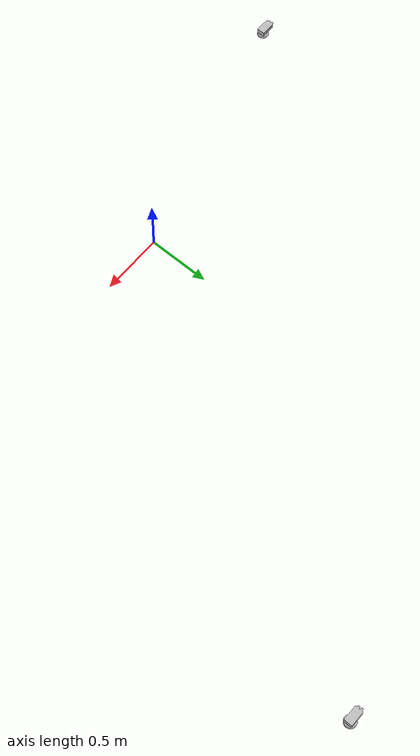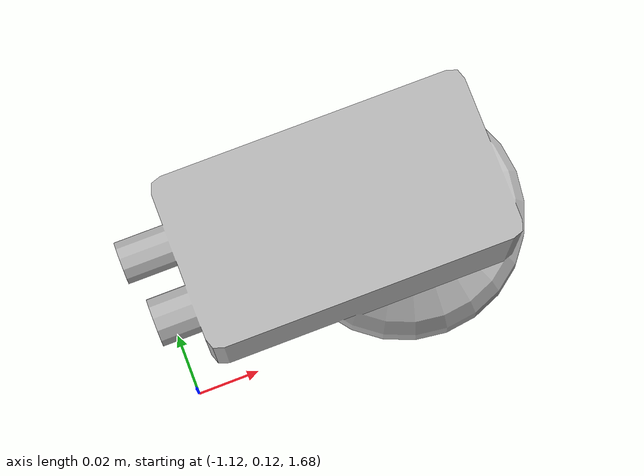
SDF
<?xml version="1.0" ?>
<sdf version="1.5">
  <world name="hrwros_world">
    <!-- Set the initial camera pose to be looking at the workspace. -->
    <gui>
      <camera name="user_camera">
        <pose>-4.33 1.88 6.11 0 0.9 -0.27</pose>
      </camera>
    </gui>
    <gravity>0 0 -20</gravity>
    <physics type="ode">
      <real_time_factor>1</real_time_factor>
    </physics>

    <!-- Disable shadows. -->
    <scene>
      <shadows>false</shadows>
    </scene>

    <!-- A global light source -->
    <include>
      <uri>model://sun</uri>
    </include>

    <!-- A directed light source -->
    <light name="camera_spot_light" type='spot'>
      <pose>-10 10 10 0 -1 -0.8</pose>
      <diffuse>0.5 0.5 0.5 1</diffuse>
      <specular>0.1 0.1 0.1 1</specular>
      <direction>0 0 -1</direction>
      <attenuation>
        <range>20</range>
        <constant>0.5</constant>
        <linear>0.01</linear>
        <quadratic>0.001</quadratic>
      </attenuation>
      <cast_shadows>0</cast_shadows>
      <spot>
        <inner_angle>0.6</inner_angle>
        <outer_angle>1</outer_angle>
        <falloff>1</falloff>
      </spot>
    </light>

    <joint name="robot1_to_world" type="fixed">
          <parent>world</parent>
          <child>robot1_base_link</child>
        </joint>

        <joint name="robot2_to_world" type="fixed">
          <parent>world</parent>
          <child>robot2_base_link</child>
        </joint>

        <include>
    <uri>model://logical_camera1</uri>
    <pose>2.4 3.6 2.2 0 1.57 0</pose>
  </include>

  <include>
    <uri>model://logical_camera2</uri>
    <pose>-1.06 0.13 1.7 0 1.57 0</pose>
  </include>

  </world>
</sdf>

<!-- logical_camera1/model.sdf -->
<sdf version="1.6">
  <model name="logical_camera_1">
    <plugin name="ros_logical_camera_1" filename="libROSLogicalCameraPlugin.so">
      <robotNamespace>hrwros</robotNamespace>
    </plugin>
    <link name="logical_camera_1_link">
      <gravity>false</gravity>
      <inertial>
        <mass>0.1</mass>
        <inertia>
          <ixx>0.000166667</ixx>
          <iyy>0.000166667</iyy>
          <izz>0.000166667</izz>
        </inertia>
      </inertial>

      <collision name="collision">
        <pose>0 0.02 0 0 0 -1.5708</pose>
        <geometry>
          <mesh>
            <uri>model://logical_camera1/meshes/camera.dae</uri>
          </mesh>
        </geometry>
      </collision>

      <visual name="visual">
        <pose>0 0.02 0 0 0 -1.5708</pose>
        <geometry>
          <mesh>
            <uri>model://logical_camera1/meshes/camera.dae</uri>
          </mesh>
        </geometry>
      </visual>

      <sensor name="logical_camera_1" type="logical_camera">

        <logical_camera>
          <near>0.2</near>
        <far>2.2</far>
          <horizontal_fov>0.7</horizontal_fov>

        <aspect_ratio>1.2</aspect_ratio>
        </logical_camera>

        <visualize>true</visualize>
        <always_on>true</always_on>
        <update_rate>10</update_rate>
        <topic>logical_camera_1</topic>
      </sensor>
    </link>
  </model>
</sdf>

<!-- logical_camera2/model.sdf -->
<sdf version="1.6">
  <model name="logical_camera_2">
    <plugin name="ros_logical_camera_2" filename="libROSLogicalCameraPlugin.so">
      <robotNamespace>hrwros</robotNamespace>
    </plugin>
    <link name="logical_camera_2_link">
      <gravity>false</gravity>
      <inertial>
        <mass>0.1</mass>
        <inertia>
          <ixx>0.000166667</ixx>
          <iyy>0.000166667</iyy>
          <izz>0.000166667</izz>
        </inertia>
      </inertial>

      <collision name="collision">
        <pose>0 0.02 0 0 0 -1.5708</pose>
        <geometry>
          <mesh>
            <uri>model://logical_camera2/meshes/camera.dae</uri>
          </mesh>
        </geometry>
      </collision>

      <visual name="visual">
        <pose>0 0.02 0 0 0 -1.5708</pose>
        <geometry>
          <mesh>
            <uri>model://logical_camera2/meshes/camera.dae</uri>
          </mesh>
        </geometry>
      </visual>

      <sensor name="logical_camera_2" type="logical_camera">

        <logical_camera>
          <near>0.2</near>
          <far>1.2</far>
          <horizontal_fov>0.6</horizontal_fov>
          <aspect_ratio>1</aspect_ratio>
        </logical_camera>

        <visualize>true</visualize>
        <always_on>true</always_on>
        <update_rate>10</update_rate>
        <topic>logical_camera_2</topic>
      </sensor>
    </link>
  </model>
</sdf>
